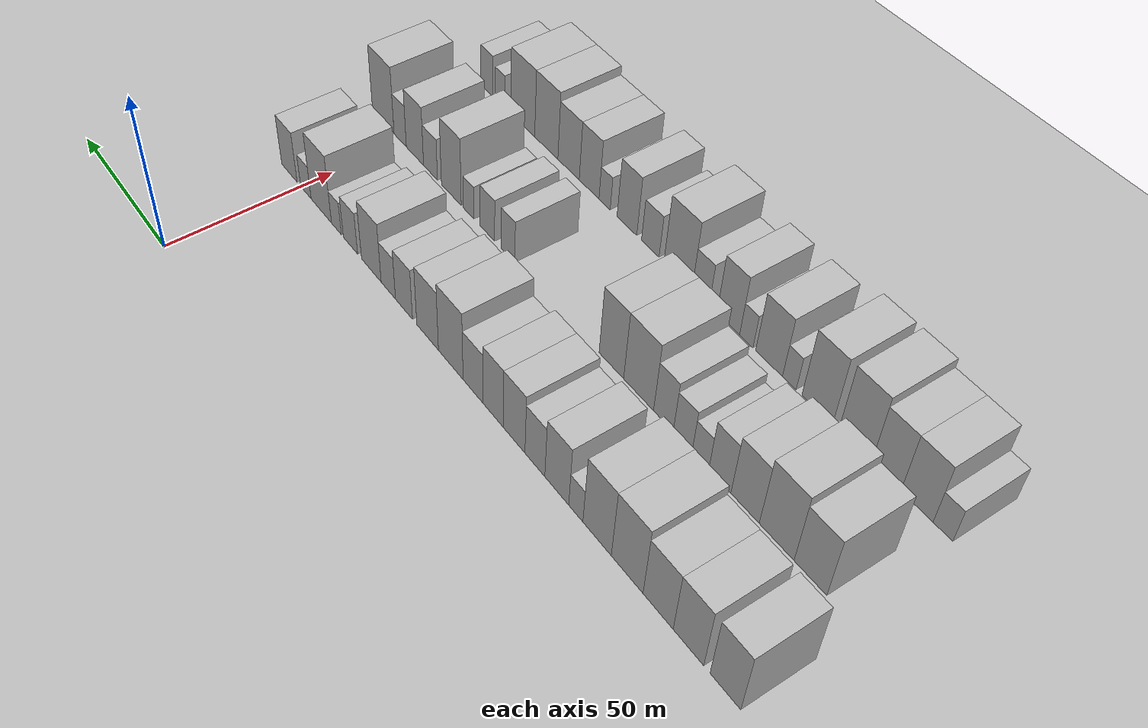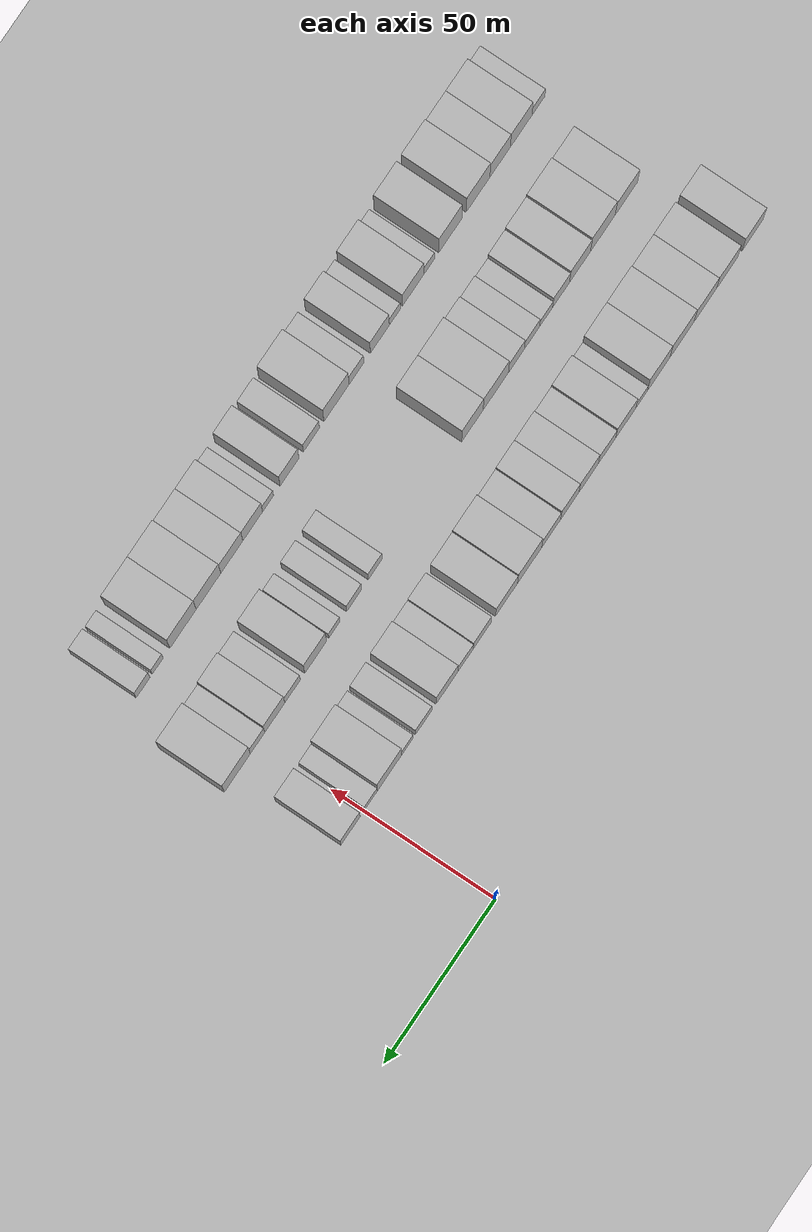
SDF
<sdf version="1.6">
 <world name="default">
  <include><name>ground_plane_1</name><uri>model://HANNAS_ground_plane</uri></include>
  <include>
   <name>ground_plane_2</name>
   <uri>model://HANNAS_ground_plane</uri>
   <pose>100 0 0  0 0 0</pose>
  </include>
  <model name="building_19">
   <static>1</static>
   <pose>50.0000 -177.5294 0 0.000000 0.000000 0.000000</pose>
   <link name="link">
    <pose>0 0 10.50 0 0 0</pose>
    <collision name="collision"><geometry><box><size>20.0000 9.5687 21.0000</size></box></geometry></collision>
    <visual name="visual">
     <cast_shadows>0</cast_shadows>
     <geometry><box><size>20.0000 9.5687 21.0000</size></box></geometry>
     <material>
      <script>
       <uri>model://HANNAS_wall/materials/scripts</uri>
       <uri>model://HANNAS_wall/materials/textures</uri>
       <name>vrc/HANNAS_wall</name>
      </script>
     </material>
    </visual>
   </link>
  </model>
  <model name="building_20">
   <static>1</static>
   <pose>50.0000 -165.7669 0 0.000000 0.000000 0.000000</pose>
   <link name="link">
    <pose>0 0 10.50 0 0 0</pose>
    <collision name="collision"><geometry><box><size>20.0000 9.9563 21.0000</size></box></geometry></collision>
    <visual name="visual">
     <cast_shadows>0</cast_shadows>
     <geometry><box><size>20.0000 9.9563 21.0000</size></box></geometry>
     <material>
      <script>
       <uri>model://HANNAS_wall/materials/scripts</uri>
       <uri>model://HANNAS_wall/materials/textures</uri>
       <name>vrc/HANNAS_wall</name>
      </script>
     </material>
    </visual>
   </link>
  </model>
  <model name="building_21">
   <static>1</static>
   <pose>50.0000 -155.6899 0 0.000000 0.000000 0.000000</pose>
   <link name="link">
    <pose>0 0 10.50 0 0 0</pose>
    <collision name="collision"><geometry><box><size>20.0000 10.1979 21.0000</size></box></geometry></collision>
    <visual name="visual">
     <cast_shadows>0</cast_shadows>
     <geometry><box><size>20.0000 10.1979 21.0000</size></box></geometry>
     <material>
      <script>
       <uri>model://HANNAS_wall/materials/scripts</uri>
       <uri>model://HANNAS_wall/materials/textures</uri>
       <name>vrc/HANNAS_wall</name>
      </script>
     </material>
    </visual>
   </link>
  </model>
  <model name="building_22">
   <static>1</static>
   <pose>50.0000 -145.0190 0 0.000000 0.000000 0.000000</pose>
   <link name="link">
    <pose>0 0 12.00 0 0 0</pose>
    <collision name="collision"><geometry><box><size>20.0000 11.1439 24.0000</size></box></geometry></collision>
    <visual name="visual">
     <cast_shadows>0</cast_shadows>
     <geometry><box><size>20.0000 11.1439 24.0000</size></box></geometry>
     <material>
      <script>
       <uri>model://HANNAS_wall/materials/scripts</uri>
       <uri>model://HANNAS_wall/materials/textures</uri>
       <name>vrc/HANNAS_wall</name>
      </script>
     </material>
    </visual>
   </link>
  </model>
  <model name="building_23">
   <static>1</static>
   <pose>50.0000 -134.2567 0 0.000000 0.000000 0.000000</pose>
   <link name="link">
    <pose>0 0 12.00 0 0 0</pose>
    <collision name="collision"><geometry><box><size>20.0000 10.3807 24.0000</size></box></geometry></collision>
    <visual name="visual">
     <cast_shadows>0</cast_shadows>
     <geometry><box><size>20.0000 10.3807 24.0000</size></box></geometry>
     <material>
      <script>
       <uri>model://HANNAS_wall/materials/scripts</uri>
       <uri>model://HANNAS_wall/materials/textures</uri>
       <name>vrc/HANNAS_wall</name>
      </script>
     </material>
    </visual>
   </link>
  </model>
  <model name="building_24">
   <static>1</static>
   <pose>50.0000 -126.4037 0 0.000000 0.000000 0.000000</pose>
   <link name="link">
    <pose>0 0 6.00 0 0 0</pose>
    <collision name="collision"><geometry><box><size>20.0000 5.3253 12.0000</size></box></geometry></collision>
    <visual name="visual">
     <cast_shadows>0</cast_shadows>
     <geometry><box><size>20.0000 5.3253 12.0000</size></box></geometry>
     <material>
      <script>
       <uri>model://HANNAS_wall/materials/scripts</uri>
       <uri>model://HANNAS_wall/materials/textures</uri>
       <name>vrc/HANNAS_wall</name>
      </script>
     </material>
    </visual>
   </link>
  </model>
  <model name="building_25">
   <static>1</static>
   <pose>50.0000 -119.1448 0 0.000000 0.000000 0.000000</pose>
   <link name="link">
    <pose>0 0 10.50 0 0 0</pose>
    <collision name="collision"><geometry><box><size>20.0000 9.1926 21.0000</size></box></geometry></collision>
    <visual name="visual">
     <cast_shadows>0</cast_shadows>
     <geometry><box><size>20.0000 9.1926 21.0000</size></box></geometry>
     <material>
      <script>
       <uri>model://HANNAS_wall/materials/scripts</uri>
       <uri>model://HANNAS_wall/materials/textures</uri>
       <name>vrc/HANNAS_wall</name>
      </script>
     </material>
    </visual>
   </link>
  </model>
  <model name="building_26">
   <static>1</static>
   <pose>50.0000 -110.6058 0 0.000000 0.000000 0.000000</pose>
   <link name="link">
    <pose>0 0 9.00 0 0 0</pose>
    <collision name="collision"><geometry><box><size>20.0000 7.8854 18.0000</size></box></geometry></collision>
    <visual name="visual">
     <cast_shadows>0</cast_shadows>
     <geometry><box><size>20.0000 7.8854 18.0000</size></box></geometry>
     <material>
      <script>
       <uri>model://HANNAS_wall/materials/scripts</uri>
       <uri>model://HANNAS_wall/materials/textures</uri>
       <name>vrc/HANNAS_wall</name>
      </script>
     </material>
    </visual>
   </link>
  </model>
  <model name="building_27">
   <static>1</static>
   <pose>50.0000 -102.2128 0 0.000000 0.000000 0.000000</pose>
   <link name="link">
    <pose>0 0 10.50 0 0 0</pose>
    <collision name="collision"><geometry><box><size>20.0000 8.9005 21.0000</size></box></geometry></collision>
    <visual name="visual">
     <cast_shadows>0</cast_shadows>
     <geometry><box><size>20.0000 8.9005 21.0000</size></box></geometry>
     <material>
      <script>
       <uri>model://HANNAS_wall/materials/scripts</uri>
       <uri>model://HANNAS_wall/materials/textures</uri>
       <name>vrc/HANNAS_wall</name>
      </script>
     </material>
    </visual>
   </link>
  </model>
  <model name="building_28">
   <static>1</static>
   <pose>50.0000 -93.5541 0 0.000000 0.000000 0.000000</pose>
   <link name="link">
    <pose>0 0 10.50 0 0 0</pose>
    <collision name="collision"><geometry><box><size>20.0000 8.4169 21.0000</size></box></geometry></collision>
    <visual name="visual">
     <cast_shadows>0</cast_shadows>
     <geometry><box><size>20.0000 8.4169 21.0000</size></box></geometry>
     <material>
      <script>
       <uri>model://HANNAS_wall/materials/scripts</uri>
       <uri>model://HANNAS_wall/materials/textures</uri>
       <name>vrc/HANNAS_wall</name>
      </script>
     </material>
    </visual>
   </link>
  </model>
  <model name="building_29">
   <static>1</static>
   <pose>50.0000 -85.0330 0 0.000000 0.000000 0.000000</pose>
   <link name="link">
    <pose>0 0 9.00 0 0 0</pose>
    <collision name="collision"><geometry><box><size>20.0000 8.6251 18.0000</size></box></geometry></collision>
    <visual name="visual">
     <cast_shadows>0</cast_shadows>
     <geometry><box><size>20.0000 8.6251 18.0000</size></box></geometry>
     <material>
      <script>
       <uri>model://HANNAS_wall/materials/scripts</uri>
       <uri>model://HANNAS_wall/materials/textures</uri>
       <name>vrc/HANNAS_wall</name>
      </script>
     </material>
    </visual>
   </link>
  </model>
  <model name="building_30">
   <static>1</static>
   <pose>50.0000 -75.2321 0 0.000000 0.000000 0.000000</pose>
   <link name="link">
    <pose>0 0 12.00 0 0 0</pose>
    <collision name="collision"><geometry><box><size>20.0000 10.9767 24.0000</size></box></geometry></collision>
    <visual name="visual">
     <cast_shadows>0</cast_shadows>
     <geometry><box><size>20.0000 10.9767 24.0000</size></box></geometry>
     <material>
      <script>
       <uri>model://HANNAS_wall/materials/scripts</uri>
       <uri>model://HANNAS_wall/materials/textures</uri>
       <name>vrc/HANNAS_wall</name>
      </script>
     </material>
    </visual>
   </link>
  </model>
  <model name="building_31">
   <static>1</static>
   <pose>50.0000 -64.7519 0 0.000000 0.000000 0.000000</pose>
   <link name="link">
    <pose>0 0 10.50 0 0 0</pose>
    <collision name="collision"><geometry><box><size>20.0000 9.9836 21.0000</size></box></geometry></collision>
    <visual name="visual">
     <cast_shadows>0</cast_shadows>
     <geometry><box><size>20.0000 9.9836 21.0000</size></box></geometry>
     <material>
      <script>
       <uri>model://HANNAS_wall/materials/scripts</uri>
       <uri>model://HANNAS_wall/materials/textures</uri>
       <name>vrc/HANNAS_wall</name>
      </script>
     </material>
    </visual>
   </link>
  </model>
  <model name="building_32">
   <static>1</static>
   <pose>50.0000 -53.7000 0 0.000000 0.000000 0.000000</pose>
   <link name="link">
    <pose>0 0 9.00 0 0 0</pose>
    <collision name="collision"><geometry><box><size>20.0000 8.1202 18.0000</size></box></geometry></collision>
    <visual name="visual">
     <cast_shadows>0</cast_shadows>
     <geometry><box><size>20.0000 8.1202 18.0000</size></box></geometry>
     <material>
      <script>
       <uri>model://HANNAS_wall/materials/scripts</uri>
       <uri>model://HANNAS_wall/materials/textures</uri>
       <name>vrc/HANNAS_wall</name>
      </script>
     </material>
    </visual>
   </link>
  </model>
  <model name="building_33">
   <static>1</static>
   <pose>50.0000 -46.1428 0 0.000000 0.000000 0.000000</pose>
   <link name="link">
    <pose>0 0 7.50 0 0 0</pose>
    <collision name="collision"><geometry><box><size>20.0000 6.9942 15.0000</size></box></geometry></collision>
    <visual name="visual">
     <cast_shadows>0</cast_shadows>
     <geometry><box><size>20.0000 6.9942 15.0000</size></box></geometry>
     <material>
      <script>
       <uri>model://HANNAS_wall/materials/scripts</uri>
       <uri>model://HANNAS_wall/materials/textures</uri>
       <name>vrc/HANNAS_wall</name>
      </script>
     </material>
    </visual>
   </link>
  </model>
  <model name="building_34">
   <static>1</static>
   <pose>50.0000 -37.7220 0 0.000000 0.000000 0.000000</pose>
   <link name="link">
    <pose>0 0 10.50 0 0 0</pose>
    <collision name="collision"><geometry><box><size>20.0000 9.8475 21.0000</size></box></geometry></collision>
    <visual name="visual">
     <cast_shadows>0</cast_shadows>
     <geometry><box><size>20.0000 9.8475 21.0000</size></box></geometry>
     <material>
      <script>
       <uri>model://HANNAS_wall/materials/scripts</uri>
       <uri>model://HANNAS_wall/materials/textures</uri>
       <name>vrc/HANNAS_wall</name>
      </script>
     </material>
    </visual>
   </link>
  </model>
  <model name="building_35">
   <static>1</static>
   <pose>50.0000 -27.1019 0 0.000000 0.000000 0.000000</pose>
   <link name="link">
    <pose>0 0 7.50 0 0 0</pose>
    <collision name="collision"><geometry><box><size>20.0000 7.3927 15.0000</size></box></geometry></collision>
    <visual name="visual">
     <cast_shadows>0</cast_shadows>
     <geometry><box><size>20.0000 7.3927 15.0000</size></box></geometry>
     <material>
      <script>
       <uri>model://HANNAS_wall/materials/scripts</uri>
       <uri>model://HANNAS_wall/materials/textures</uri>
       <name>vrc/HANNAS_wall</name>
      </script>
     </material>
    </visual>
   </link>
  </model>
  <model name="building_36">
   <static>1</static>
   <pose>50.0000 -19.7818 0 0.000000 0.000000 0.000000</pose>
   <link name="link">
    <pose>0 0 6.00 0 0 0</pose>
    <collision name="collision"><geometry><box><size>20.0000 5.2476 12.0000</size></box></geometry></collision>
    <visual name="visual">
     <cast_shadows>0</cast_shadows>
     <geometry><box><size>20.0000 5.2476 12.0000</size></box></geometry>
     <material>
      <script>
       <uri>model://HANNAS_wall/materials/scripts</uri>
       <uri>model://HANNAS_wall/materials/textures</uri>
       <name>vrc/HANNAS_wall</name>
      </script>
     </material>
    </visual>
   </link>
  </model>
  <model name="building_37">
   <static>1</static>
   <pose>50.0000 -11.6371 0 0.000000 0.000000 0.000000</pose>
   <link name="link">
    <pose>0 0 12.00 0 0 0</pose>
    <collision name="collision"><geometry><box><size>20.0000 11.0417 24.0000</size></box></geometry></collision>
    <visual name="visual">
     <cast_shadows>0</cast_shadows>
     <geometry><box><size>20.0000 11.0417 24.0000</size></box></geometry>
     <material>
      <script>
       <uri>model://HANNAS_wall/materials/scripts</uri>
       <uri>model://HANNAS_wall/materials/textures</uri>
       <name>vrc/HANNAS_wall</name>
      </script>
     </material>
    </visual>
   </link>
  </model>
  <model name="building_38">
   <static>1</static>
   <pose>50.0000 -3.2263 0 0.000000 0.000000 0.000000</pose>
   <link name="link">
    <pose>0 0 6.00 0 0 0</pose>
    <collision name="collision"><geometry><box><size>20.0000 5.7800 12.0000</size></box></geometry></collision>
    <visual name="visual">
     <cast_shadows>0</cast_shadows>
     <geometry><box><size>20.0000 5.7800 12.0000</size></box></geometry>
     <material>
      <script>
       <uri>model://HANNAS_wall/materials/scripts</uri>
       <uri>model://HANNAS_wall/materials/textures</uri>
       <name>vrc/HANNAS_wall</name>
      </script>
     </material>
    </visual>
   </link>
  </model>
  <model name="building_39">
   <static>1</static>
   <pose>50.0000 6.0282 0 0.000000 0.000000 0.000000</pose>
   <link name="link">
    <pose>0 0 9.00 0 0 0</pose>
    <collision name="collision"><geometry><box><size>20.0000 8.7289 18.0000</size></box></geometry></collision>
    <visual name="visual">
     <cast_shadows>0</cast_shadows>
     <geometry><box><size>20.0000 8.7289 18.0000</size></box></geometry>
     <material>
      <script>
       <uri>model://HANNAS_wall/materials/scripts</uri>
       <uri>model://HANNAS_wall/materials/textures</uri>
       <name>vrc/HANNAS_wall</name>
      </script>
     </material>
    </visual>
   </link>
  </model>
  <model name="building_98">
   <static>1</static>
   <pose>82.0000 -167.3788 0 0.000000 0.000000 0.000000</pose>
   <link name="link">
    <pose>0 0 10.50 0 0 0</pose>
    <collision name="collision"><geometry><box><size>20.0000 10.3010 21.0000</size></box></geometry></collision>
    <visual name="visual">
     <cast_shadows>0</cast_shadows>
     <geometry><box><size>20.0000 10.3010 21.0000</size></box></geometry>
     <material>
      <script>
       <uri>model://HANNAS_wall/materials/scripts</uri>
       <uri>model://HANNAS_wall/materials/textures</uri>
       <name>vrc/HANNAS_wall</name>
      </script>
     </material>
    </visual>
   </link>
  </model>
  <model name="building_99">
   <static>1</static>
   <pose>82.0000 -156.5479 0 0.000000 0.000000 0.000000</pose>
   <link name="link">
    <pose>0 0 12.00 0 0 0</pose>
    <collision name="collision"><geometry><box><size>20.0000 11.3608 24.0000</size></box></geometry></collision>
    <visual name="visual">
     <cast_shadows>0</cast_shadows>
     <geometry><box><size>20.0000 11.3608 24.0000</size></box></geometry>
     <material>
      <script>
       <uri>model://HANNAS_wall/materials/scripts</uri>
       <uri>model://HANNAS_wall/materials/textures</uri>
       <name>vrc/HANNAS_wall</name>
      </script>
     </material>
    </visual>
   </link>
  </model>
  <model name="building_100">
   <static>1</static>
   <pose>82.0000 -146.0512 0 0.000000 0.000000 0.000000</pose>
   <link name="link">
    <pose>0 0 10.50 0 0 0</pose>
    <collision name="collision"><geometry><box><size>20.0000 9.6326 21.0000</size></box></geometry></collision>
    <visual name="visual">
     <cast_shadows>0</cast_shadows>
     <geometry><box><size>20.0000 9.6326 21.0000</size></box></geometry>
     <material>
      <script>
       <uri>model://HANNAS_wall/materials/scripts</uri>
       <uri>model://HANNAS_wall/materials/textures</uri>
       <name>vrc/HANNAS_wall</name>
      </script>
     </material>
    </visual>
   </link>
  </model>
  <model name="building_101">
   <static>1</static>
   <pose>82.0000 -137.3742 0 0.000000 0.000000 0.000000</pose>
   <link name="link">
    <pose>0 0 9.00 0 0 0</pose>
    <collision name="collision"><geometry><box><size>20.0000 7.7214 18.0000</size></box></geometry></collision>
    <visual name="visual">
     <cast_shadows>0</cast_shadows>
     <geometry><box><size>20.0000 7.7214 18.0000</size></box></geometry>
     <material>
      <script>
       <uri>model://HANNAS_wall/materials/scripts</uri>
       <uri>model://HANNAS_wall/materials/textures</uri>
       <name>vrc/HANNAS_wall</name>
      </script>
     </material>
    </visual>
   </link>
  </model>
  <model name="building_102">
   <static>1</static>
   <pose>82.0000 -130.5392 0 0.000000 0.000000 0.000000</pose>
   <link name="link">
    <pose>0 0 6.00 0 0 0</pose>
    <collision name="collision"><geometry><box><size>20.0000 5.9486 12.0000</size></box></geometry></collision>
    <visual name="visual">
     <cast_shadows>0</cast_shadows>
     <geometry><box><size>20.0000 5.9486 12.0000</size></box></geometry>
     <material>
      <script>
       <uri>model://HANNAS_wall/materials/scripts</uri>
       <uri>model://HANNAS_wall/materials/textures</uri>
       <name>vrc/HANNAS_wall</name>
      </script>
     </material>
    </visual>
   </link>
  </model>
  <model name="building_103">
   <static>1</static>
   <pose>82.0000 -124.1092 0 0.000000 0.000000 0.000000</pose>
   <link name="link">
    <pose>0 0 7.50 0 0 0</pose>
    <collision name="collision"><geometry><box><size>20.0000 6.9114 15.0000</size></box></geometry></collision>
    <visual name="visual">
     <cast_shadows>0</cast_shadows>
     <geometry><box><size>20.0000 6.9114 15.0000</size></box></geometry>
     <material>
      <script>
       <uri>model://HANNAS_wall/materials/scripts</uri>
       <uri>model://HANNAS_wall/materials/textures</uri>
       <name>vrc/HANNAS_wall</name>
      </script>
     </material>
    </visual>
   </link>
  </model>
  <model name="building_104">
   <static>1</static>
   <pose>82.0000 -116.9804 0 0.000000 0.000000 0.000000</pose>
   <link name="link">
    <pose>0 0 9.00 0 0 0</pose>
    <collision name="collision"><geometry><box><size>20.0000 7.3462 18.0000</size></box></geometry></collision>
    <visual name="visual">
     <cast_shadows>0</cast_shadows>
     <geometry><box><size>20.0000 7.3462 18.0000</size></box></geometry>
     <material>
      <script>
       <uri>model://HANNAS_wall/materials/scripts</uri>
       <uri>model://HANNAS_wall/materials/textures</uri>
       <name>vrc/HANNAS_wall</name>
      </script>
     </material>
    </visual>
   </link>
  </model>
  <model name="building_105">
   <static>1</static>
   <pose>82.0000 -107.5270 0 0.000000 0.000000 0.000000</pose>
   <link name="link">
    <pose>0 0 12.00 0 0 0</pose>
    <collision name="collision"><geometry><box><size>20.0000 11.5606 24.0000</size></box></geometry></collision>
    <visual name="visual">
     <cast_shadows>0</cast_shadows>
     <geometry><box><size>20.0000 11.5606 24.0000</size></box></geometry>
     <material>
      <script>
       <uri>model://HANNAS_wall/materials/scripts</uri>
       <uri>model://HANNAS_wall/materials/textures</uri>
       <name>vrc/HANNAS_wall</name>
      </script>
     </material>
    </visual>
   </link>
  </model>
  <model name="building_106">
   <static>1</static>
   <pose>82.0000 -96.8555 0 0.000000 0.000000 0.000000</pose>
   <link name="link">
    <pose>0 0 12.00 0 0 0</pose>
    <collision name="collision"><geometry><box><size>20.0000 9.7825 24.0000</size></box></geometry></collision>
    <visual name="visual">
     <cast_shadows>0</cast_shadows>
     <geometry><box><size>20.0000 9.7825 24.0000</size></box></geometry>
     <material>
      <script>
       <uri>model://HANNAS_wall/materials/scripts</uri>
       <uri>model://HANNAS_wall/materials/textures</uri>
       <name>vrc/HANNAS_wall</name>
      </script>
     </material>
    </visual>
   </link>
  </model>
  <model name="building_107">
   <static>1</static>
   <pose>82.0000 -52.5880 0 0.000000 0.000000 0.000000</pose>
   <link name="link">
    <pose>0 0 7.50 0 0 0</pose>
    <collision name="collision"><geometry><box><size>20.0000 6.2508 15.0000</size></box></geometry></collision>
    <visual name="visual">
     <cast_shadows>0</cast_shadows>
     <geometry><box><size>20.0000 6.2508 15.0000</size></box></geometry>
     <material>
      <script>
       <uri>model://HANNAS_wall/materials/scripts</uri>
       <uri>model://HANNAS_wall/materials/textures</uri>
       <name>vrc/HANNAS_wall</name>
      </script>
     </material>
    </visual>
   </link>
  </model>
  <model name="building_108">
   <static>1</static>
   <pose>82.0000 -43.0544 0 0.000000 0.000000 0.000000</pose>
   <link name="link">
    <pose>0 0 7.50 0 0 0</pose>
    <collision name="collision"><geometry><box><size>20.0000 6.8164 15.0000</size></box></geometry></collision>
    <visual name="visual">
     <cast_shadows>0</cast_shadows>
     <geometry><box><size>20.0000 6.8164 15.0000</size></box></geometry>
     <material>
      <script>
       <uri>model://HANNAS_wall/materials/scripts</uri>
       <uri>model://HANNAS_wall/materials/textures</uri>
       <name>vrc/HANNAS_wall</name>
      </script>
     </material>
    </visual>
   </link>
  </model>
  <model name="building_109">
   <static>1</static>
   <pose>82.0000 -34.0797 0 0.000000 0.000000 0.000000</pose>
   <link name="link">
    <pose>0 0 6.00 0 0 0</pose>
    <collision name="collision"><geometry><box><size>20.0000 5.1331 12.0000</size></box></geometry></collision>
    <visual name="visual">
     <cast_shadows>0</cast_shadows>
     <geometry><box><size>20.0000 5.1331 12.0000</size></box></geometry>
     <material>
      <script>
       <uri>model://HANNAS_wall/materials/scripts</uri>
       <uri>model://HANNAS_wall/materials/textures</uri>
       <name>vrc/HANNAS_wall</name>
      </script>
     </material>
    </visual>
   </link>
  </model>
  <model name="building_110">
   <static>1</static>
   <pose>82.0000 -25.5946 0 0.000000 0.000000 0.000000</pose>
   <link name="link">
    <pose>0 0 12.00 0 0 0</pose>
    <collision name="collision"><geometry><box><size>20.0000 9.8370 24.0000</size></box></geometry></collision>
    <visual name="visual">
     <cast_shadows>0</cast_shadows>
     <geometry><box><size>20.0000 9.8370 24.0000</size></box></geometry>
     <material>
      <script>
       <uri>model://HANNAS_wall/materials/scripts</uri>
       <uri>model://HANNAS_wall/materials/textures</uri>
       <name>vrc/HANNAS_wall</name>
      </script>
     </material>
    </visual>
   </link>
  </model>
  <model name="building_111">
   <static>1</static>
   <pose>82.0000 -15.1331 0 0.000000 0.000000 0.000000</pose>
   <link name="link">
    <pose>0 0 7.50 0 0 0</pose>
    <collision name="collision"><geometry><box><size>20.0000 7.0861 15.0000</size></box></geometry></collision>
    <visual name="visual">
     <cast_shadows>0</cast_shadows>
     <geometry><box><size>20.0000 7.0861 15.0000</size></box></geometry>
     <material>
      <script>
       <uri>model://HANNAS_wall/materials/scripts</uri>
       <uri>model://HANNAS_wall/materials/textures</uri>
       <name>vrc/HANNAS_wall</name>
      </script>
     </material>
    </visual>
   </link>
  </model>
  <model name="building_112">
   <static>1</static>
   <pose>82.0000 -7.0682 0 0.000000 0.000000 0.000000</pose>
   <link name="link">
    <pose>0 0 10.50 0 0 0</pose>
    <collision name="collision"><geometry><box><size>20.0000 9.0437 21.0000</size></box></geometry></collision>
    <visual name="visual">
     <cast_shadows>0</cast_shadows>
     <geometry><box><size>20.0000 9.0437 21.0000</size></box></geometry>
     <material>
      <script>
       <uri>model://HANNAS_wall/materials/scripts</uri>
       <uri>model://HANNAS_wall/materials/textures</uri>
       <name>vrc/HANNAS_wall</name>
      </script>
     </material>
    </visual>
   </link>
  </model>
  <model name="building_113">
   <static>1</static>
   <pose>82.0000 0.7229 0 0.000000 0.000000 0.000000</pose>
   <link name="link">
    <pose>0 0 7.50 0 0 0</pose>
    <collision name="collision"><geometry><box><size>20.0000 6.5385 15.0000</size></box></geometry></collision>
    <visual name="visual">
     <cast_shadows>0</cast_shadows>
     <geometry><box><size>20.0000 6.5385 15.0000</size></box></geometry>
     <material>
      <script>
       <uri>model://HANNAS_wall/materials/scripts</uri>
       <uri>model://HANNAS_wall/materials/textures</uri>
       <name>vrc/HANNAS_wall</name>
      </script>
     </material>
    </visual>
   </link>
  </model>
  <model name="building_114">
   <static>1</static>
   <pose>82.0000 9.8748 0 0.000000 0.000000 0.000000</pose>
   <link name="link">
    <pose>0 0 12.00 0 0 0</pose>
    <collision name="collision"><geometry><box><size>20.0000 11.7652 24.0000</size></box></geometry></collision>
    <visual name="visual">
     <cast_shadows>0</cast_shadows>
     <geometry><box><size>20.0000 11.7652 24.0000</size></box></geometry>
     <material>
      <script>
       <uri>model://HANNAS_wall/materials/scripts</uri>
       <uri>model://HANNAS_wall/materials/textures</uri>
       <name>vrc/HANNAS_wall</name>
      </script>
     </material>
    </visual>
   </link>
  </model>
  <model name="building_174">
   <static>1</static>
   <pose>114.0000 -174.7686 0 0.000000 0.000000 0.000000</pose>
   <link name="link">
    <pose>0 0 6.00 0 0 0</pose>
    <collision name="collision"><geometry><box><size>20.0000 5.9193 12.0000</size></box></geometry></collision>
    <visual name="visual">
     <cast_shadows>0</cast_shadows>
     <geometry><box><size>20.0000 5.9193 12.0000</size></box></geometry>
     <material>
      <script>
       <uri>model://HANNAS_wall/materials/scripts</uri>
       <uri>model://HANNAS_wall/materials/textures</uri>
       <name>vrc/HANNAS_wall</name>
      </script>
     </material>
    </visual>
   </link>
  </model>
  <model name="building_175">
   <static>1</static>
   <pose>114.0000 -166.8479 0 0.000000 0.000000 0.000000</pose>
   <link name="link">
    <pose>0 0 10.50 0 0 0</pose>
    <collision name="collision"><geometry><box><size>20.0000 9.9220 21.0000</size></box></geometry></collision>
    <visual name="visual">
     <cast_shadows>0</cast_shadows>
     <geometry><box><size>20.0000 9.9220 21.0000</size></box></geometry>
     <material>
      <script>
       <uri>model://HANNAS_wall/materials/scripts</uri>
       <uri>model://HANNAS_wall/materials/textures</uri>
       <name>vrc/HANNAS_wall</name>
      </script>
     </material>
    </visual>
   </link>
  </model>
  <model name="building_176">
   <static>1</static>
   <pose>114.0000 -157.1862 0 0.000000 0.000000 0.000000</pose>
   <link name="link">
    <pose>0 0 10.50 0 0 0</pose>
    <collision name="collision"><geometry><box><size>20.0000 9.4013 21.0000</size></box></geometry></collision>
    <visual name="visual">
     <cast_shadows>0</cast_shadows>
     <geometry><box><size>20.0000 9.4013 21.0000</size></box></geometry>
     <material>
      <script>
       <uri>model://HANNAS_wall/materials/scripts</uri>
       <uri>model://HANNAS_wall/materials/textures</uri>
       <name>vrc/HANNAS_wall</name>
      </script>
     </material>
    </visual>
   </link>
  </model>
  <model name="building_177">
   <static>1</static>
   <pose>114.0000 -147.0654 0 0.000000 0.000000 0.000000</pose>
   <link name="link">
    <pose>0 0 12.00 0 0 0</pose>
    <collision name="collision"><geometry><box><size>20.0000 10.8404 24.0000</size></box></geometry></collision>
    <visual name="visual">
     <cast_shadows>0</cast_shadows>
     <geometry><box><size>20.0000 10.8404 24.0000</size></box></geometry>
     <material>
      <script>
       <uri>model://HANNAS_wall/materials/scripts</uri>
       <uri>model://HANNAS_wall/materials/textures</uri>
       <name>vrc/HANNAS_wall</name>
      </script>
     </material>
    </visual>
   </link>
  </model>
  <model name="building_178">
   <static>1</static>
   <pose>114.0000 -134.3747 0 0.000000 0.000000 0.000000</pose>
   <link name="link">
    <pose>0 0 12.00 0 0 0</pose>
    <collision name="collision"><geometry><box><size>20.0000 10.5410 24.0000</size></box></geometry></collision>
    <visual name="visual">
     <cast_shadows>0</cast_shadows>
     <geometry><box><size>20.0000 10.5410 24.0000</size></box></geometry>
     <material>
      <script>
       <uri>model://HANNAS_wall/materials/scripts</uri>
       <uri>model://HANNAS_wall/materials/textures</uri>
       <name>vrc/HANNAS_wall</name>
      </script>
     </material>
    </visual>
   </link>
  </model>
  <model name="building_179">
   <static>1</static>
   <pose>114.0000 -124.6776 0 0.000000 0.000000 0.000000</pose>
   <link name="link">
    <pose>0 0 6.00 0 0 0</pose>
    <collision name="collision"><geometry><box><size>20.0000 4.8531 12.0000</size></box></geometry></collision>
    <visual name="visual">
     <cast_shadows>0</cast_shadows>
     <geometry><box><size>20.0000 4.8531 12.0000</size></box></geometry>
     <material>
      <script>
       <uri>model://HANNAS_wall/materials/scripts</uri>
       <uri>model://HANNAS_wall/materials/textures</uri>
       <name>vrc/HANNAS_wall</name>
      </script>
     </material>
    </visual>
   </link>
  </model>
  <model name="building_180">
   <static>1</static>
   <pose>114.0000 -117.3767 0 0.000000 0.000000 0.000000</pose>
   <link name="link">
    <pose>0 0 10.50 0 0 0</pose>
    <collision name="collision"><geometry><box><size>20.0000 9.7488 21.0000</size></box></geometry></collision>
    <visual name="visual">
     <cast_shadows>0</cast_shadows>
     <geometry><box><size>20.0000 9.7488 21.0000</size></box></geometry>
     <material>
      <script>
       <uri>model://HANNAS_wall/materials/scripts</uri>
       <uri>model://HANNAS_wall/materials/textures</uri>
       <name>vrc/HANNAS_wall</name>
      </script>
     </material>
    </visual>
   </link>
  </model>
  <model name="building_181">
   <static>1</static>
   <pose>114.0000 -109.0060 0 0.000000 0.000000 0.000000</pose>
   <link name="link">
    <pose>0 0 6.00 0 0 0</pose>
    <collision name="collision"><geometry><box><size>20.0000 4.9926 12.0000</size></box></geometry></collision>
    <visual name="visual">
     <cast_shadows>0</cast_shadows>
     <geometry><box><size>20.0000 4.9926 12.0000</size></box></geometry>
     <material>
      <script>
       <uri>model://HANNAS_wall/materials/scripts</uri>
       <uri>model://HANNAS_wall/materials/textures</uri>
       <name>vrc/HANNAS_wall</name>
      </script>
     </material>
    </visual>
   </link>
  </model>
  <model name="building_182">
   <static>1</static>
   <pose>114.0000 -102.1812 0 0.000000 0.000000 0.000000</pose>
   <link name="link">
    <pose>0 0 10.50 0 0 0</pose>
    <collision name="collision"><geometry><box><size>20.0000 8.6570 21.0000</size></box></geometry></collision>
    <visual name="visual">
     <cast_shadows>0</cast_shadows>
     <geometry><box><size>20.0000 8.6570 21.0000</size></box></geometry>
     <material>
      <script>
       <uri>model://HANNAS_wall/materials/scripts</uri>
       <uri>model://HANNAS_wall/materials/textures</uri>
       <name>vrc/HANNAS_wall</name>
      </script>
     </material>
    </visual>
   </link>
  </model>
  <model name="building_183">
   <static>1</static>
   <pose>114.0000 -91.4897 0 0.000000 0.000000 0.000000</pose>
   <link name="link">
    <pose>0 0 7.50 0 0 0</pose>
    <collision name="collision"><geometry><box><size>20.0000 6.7261 15.0000</size></box></geometry></collision>
    <visual name="visual">
     <cast_shadows>0</cast_shadows>
     <geometry><box><size>20.0000 6.7261 15.0000</size></box></geometry>
     <material>
      <script>
       <uri>model://HANNAS_wall/materials/scripts</uri>
       <uri>model://HANNAS_wall/materials/textures</uri>
       <name>vrc/HANNAS_wall</name>
      </script>
     </material>
    </visual>
   </link>
  </model>
  <model name="building_184">
   <static>1</static>
   <pose>114.0000 -82.4210 0 0.000000 0.000000 0.000000</pose>
   <link name="link">
    <pose>0 0 12.00 0 0 0</pose>
    <collision name="collision"><geometry><box><size>20.0000 11.4112 24.0000</size></box></geometry></collision>
    <visual name="visual">
     <cast_shadows>0</cast_shadows>
     <geometry><box><size>20.0000 11.4112 24.0000</size></box></geometry>
     <material>
      <script>
       <uri>model://HANNAS_wall/materials/scripts</uri>
       <uri>model://HANNAS_wall/materials/textures</uri>
       <name>vrc/HANNAS_wall</name>
      </script>
     </material>
    </visual>
   </link>
  </model>
  <model name="building_185">
   <static>1</static>
   <pose>114.0000 -71.0257 0 0.000000 0.000000 0.000000</pose>
   <link name="link">
    <pose>0 0 7.50 0 0 0</pose>
    <collision name="collision"><geometry><box><size>20.0000 7.3795 15.0000</size></box></geometry></collision>
    <visual name="visual">
     <cast_shadows>0</cast_shadows>
     <geometry><box><size>20.0000 7.3795 15.0000</size></box></geometry>
     <material>
      <script>
       <uri>model://HANNAS_wall/materials/scripts</uri>
       <uri>model://HANNAS_wall/materials/textures</uri>
       <name>vrc/HANNAS_wall</name>
      </script>
     </material>
    </visual>
   </link>
  </model>
  <model name="building_186">
   <static>1</static>
   <pose>114.0000 -61.0755 0 0.000000 0.000000 0.000000</pose>
   <link name="link">
    <pose>0 0 10.50 0 0 0</pose>
    <collision name="collision"><geometry><box><size>20.0000 8.5209 21.0000</size></box></geometry></collision>
    <visual name="visual">
     <cast_shadows>0</cast_shadows>
     <geometry><box><size>20.0000 8.5209 21.0000</size></box></geometry>
     <material>
      <script>
       <uri>model://HANNAS_wall/materials/scripts</uri>
       <uri>model://HANNAS_wall/materials/textures</uri>
       <name>vrc/HANNAS_wall</name>
      </script>
     </material>
    </visual>
   </link>
  </model>
  <model name="building_187">
   <static>1</static>
   <pose>114.0000 -51.3205 0 0.000000 0.000000 0.000000</pose>
   <link name="link">
    <pose>0 0 6.00 0 0 0</pose>
    <collision name="collision"><geometry><box><size>20.0000 4.9891 12.0000</size></box></geometry></collision>
    <visual name="visual">
     <cast_shadows>0</cast_shadows>
     <geometry><box><size>20.0000 4.9891 12.0000</size></box></geometry>
     <material>
      <script>
       <uri>model://HANNAS_wall/materials/scripts</uri>
       <uri>model://HANNAS_wall/materials/textures</uri>
       <name>vrc/HANNAS_wall</name>
      </script>
     </material>
    </visual>
   </link>
  </model>
  <model name="building_188">
   <static>1</static>
   <pose>114.0000 -44.3442 0 0.000000 0.000000 0.000000</pose>
   <link name="link">
    <pose>0 0 10.50 0 0 0</pose>
    <collision name="collision"><geometry><box><size>20.0000 8.9636 21.0000</size></box></geometry></collision>
    <visual name="visual">
     <cast_shadows>0</cast_shadows>
     <geometry><box><size>20.0000 8.9636 21.0000</size></box></geometry>
     <material>
      <script>
       <uri>model://HANNAS_wall/materials/scripts</uri>
       <uri>model://HANNAS_wall/materials/textures</uri>
       <name>vrc/HANNAS_wall</name>
      </script>
     </material>
    </visual>
   </link>
  </model>
  <model name="building_189">
   <static>1</static>
   <pose>114.0000 -34.8891 0 0.000000 0.000000 0.000000</pose>
   <link name="link">
    <pose>0 0 10.50 0 0 0</pose>
    <collision name="collision"><geometry><box><size>20.0000 9.9466 21.0000</size></box></geometry></collision>
    <visual name="visual">
     <cast_shadows>0</cast_shadows>
     <geometry><box><size>20.0000 9.9466 21.0000</size></box></geometry>
     <material>
      <script>
       <uri>model://HANNAS_wall/materials/scripts</uri>
       <uri>model://HANNAS_wall/materials/textures</uri>
       <name>vrc/HANNAS_wall</name>
      </script>
     </material>
    </visual>
   </link>
  </model>
  <model name="building_190">
   <static>1</static>
   <pose>114.0000 -24.3339 0 0.000000 0.000000 0.000000</pose>
   <link name="link">
    <pose>0 0 12.00 0 0 0</pose>
    <collision name="collision"><geometry><box><size>20.0000 11.1637 24.0000</size></box></geometry></collision>
    <visual name="visual">
     <cast_shadows>0</cast_shadows>
     <geometry><box><size>20.0000 11.1637 24.0000</size></box></geometry>
     <material>
      <script>
       <uri>model://HANNAS_wall/materials/scripts</uri>
       <uri>model://HANNAS_wall/materials/textures</uri>
       <name>vrc/HANNAS_wall</name>
      </script>
     </material>
    </visual>
   </link>
  </model>
  <model name="building_191">
   <static>1</static>
   <pose>114.0000 -12.7897 0 0.000000 0.000000 0.000000</pose>
   <link name="link">
    <pose>0 0 12.00 0 0 0</pose>
    <collision name="collision"><geometry><box><size>20.0000 11.9247 24.0000</size></box></geometry></collision>
    <visual name="visual">
     <cast_shadows>0</cast_shadows>
     <geometry><box><size>20.0000 11.9247 24.0000</size></box></geometry>
     <material>
      <script>
       <uri>model://HANNAS_wall/materials/scripts</uri>
       <uri>model://HANNAS_wall/materials/textures</uri>
       <name>vrc/HANNAS_wall</name>
      </script>
     </material>
    </visual>
   </link>
  </model>
  <model name="building_192">
   <static>1</static>
   <pose>114.0000 -1.3679 0 0.000000 0.000000 0.000000</pose>
   <link name="link">
    <pose>0 0 6.00 0 0 0</pose>
    <collision name="collision"><geometry><box><size>20.0000 4.9189 12.0000</size></box></geometry></collision>
    <visual name="visual">
     <cast_shadows>0</cast_shadows>
     <geometry><box><size>20.0000 4.9189 12.0000</size></box></geometry>
     <material>
      <script>
       <uri>model://HANNAS_wall/materials/scripts</uri>
       <uri>model://HANNAS_wall/materials/textures</uri>
       <name>vrc/HANNAS_wall</name>
      </script>
     </material>
    </visual>
   </link>
  </model>
  <model name="building_193">
   <static>1</static>
   <pose>114.0000 5.2313 0 0.000000 0.000000 0.000000</pose>
   <link name="link">
    <pose>0 0 7.50 0 0 0</pose>
    <collision name="collision"><geometry><box><size>20.0000 6.2795 15.0000</size></box></geometry></collision>
    <visual name="visual">
     <cast_shadows>0</cast_shadows>
     <geometry><box><size>20.0000 6.2795 15.0000</size></box></geometry>
     <material>
      <script>
       <uri>model://HANNAS_wall/materials/scripts</uri>
       <uri>model://HANNAS_wall/materials/textures</uri>
       <name>vrc/HANNAS_wall</name>
      </script>
     </material>
    </visual>
   </link>
  </model>
 </world>
</sdf>
